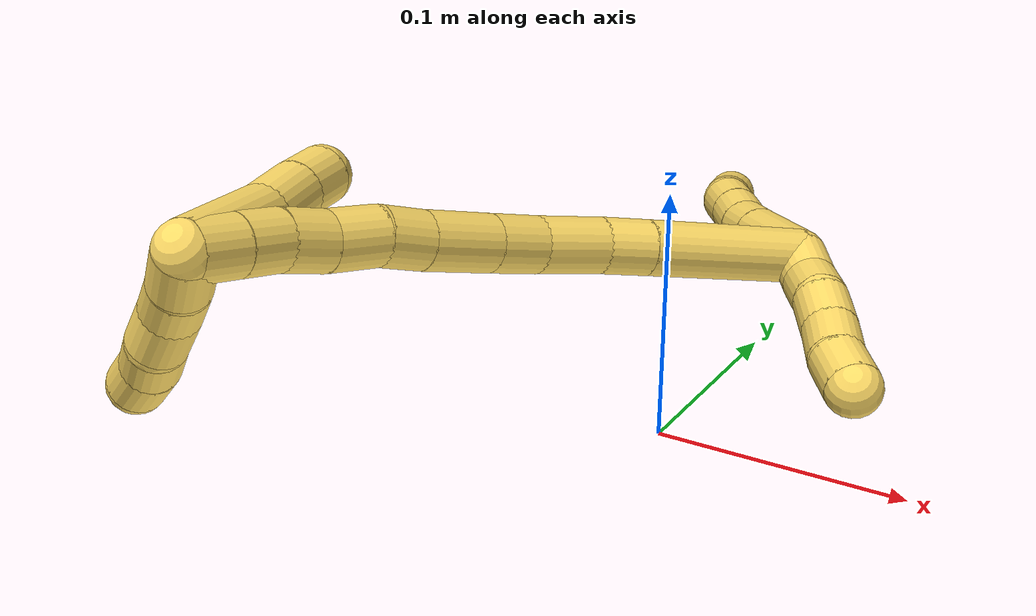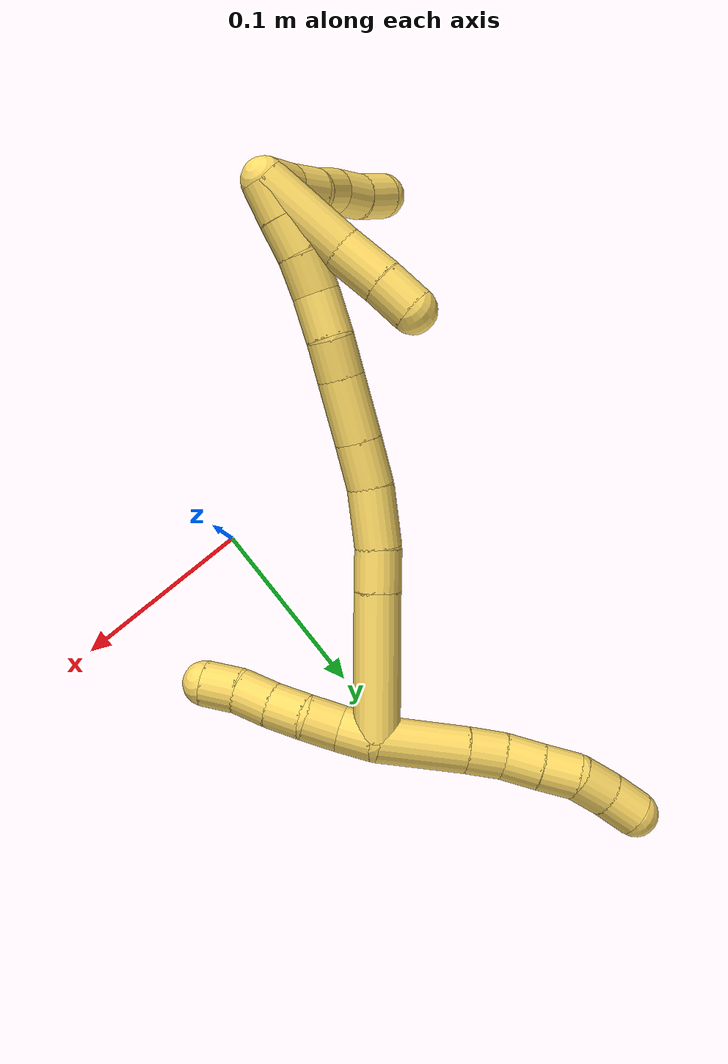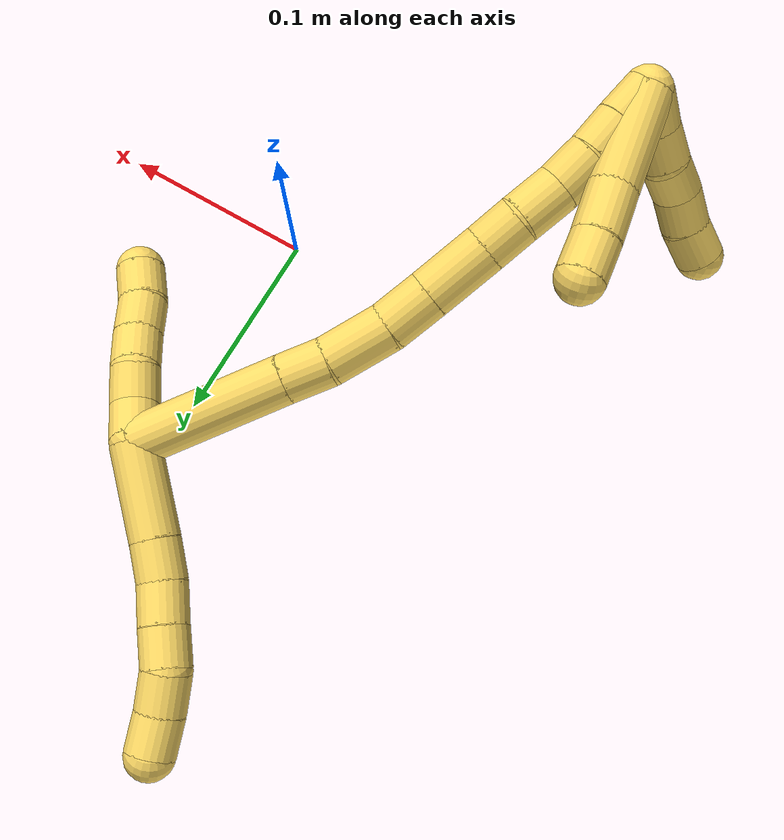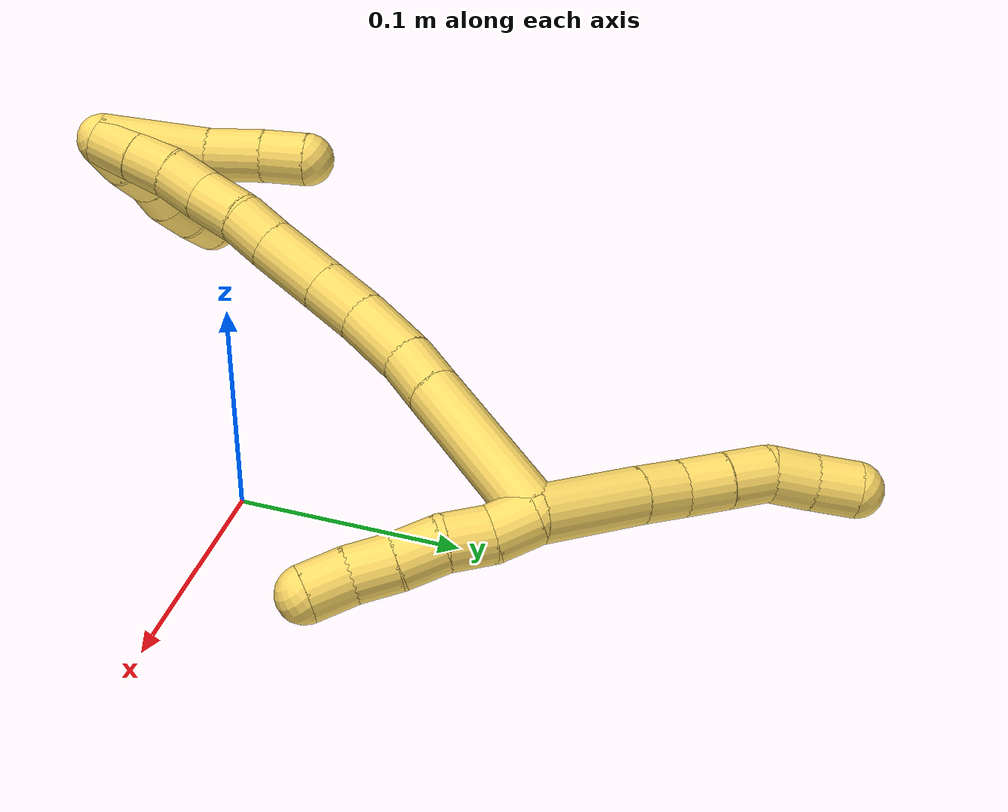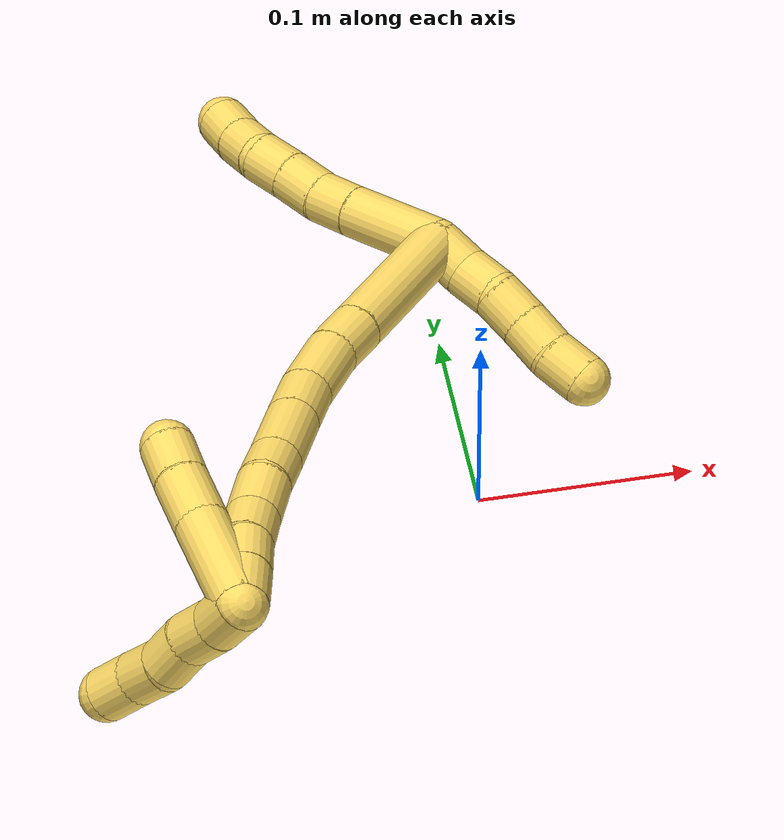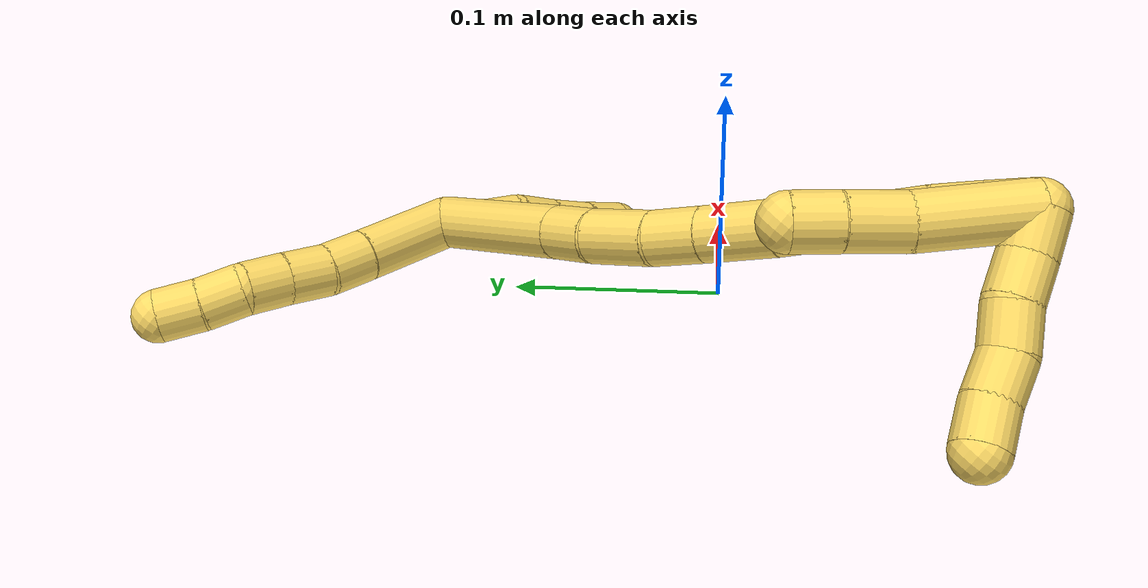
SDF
<sdf version="1.7">
 <world name="default">
  <model name="5">
   <static>0</static>
   <link name="5">
    <collision name="collision-cylinder-e_1_2_8">
     <pose>-0.018243 0.005586 -0.014931 -2.78361 -0.852616 2.38338</pose>
     <geometry><cylinder><radius>0.0125</radius><length>0.048454</length></cylinder></geometry>
     <surface>
      <friction><ode><mu>1.16</mu><mu2>1.16</mu2><slip1>0</slip1><slip2>0</slip2></ode></friction>
      <contact><ode><kp>1e+06</kp><kd>1</kd><max_vel>0</max_vel><min_depth>0.001</min_depth></ode></contact>
     </surface>
    </collision>
    <visual name="visual-cylinder-e_1_2_8">
     <pose>-0.018243 0.005586 -0.014931 -2.78361 -0.852616 2.38338</pose>
     <geometry><cylinder><radius>0.0125</radius><length>0.048454</length></cylinder></geometry>
     <material><ambient>1 0.858824 0.4 1</ambient></material>
    </visual>
    <collision name="collision-cylinder-e_2_8_9">
     <pose>-0.043969 0.013806 -0.036276 -2.75189 -0.823424 2.29264</pose>
     <geometry><cylinder><radius>0.0125</radius><length>0.020403</length></cylinder></geometry>
     <surface>
      <friction><ode><mu>1.16</mu><mu2>1.16</mu2><slip1>0</slip1><slip2>0</slip2></ode></friction>
      <contact><ode><kp>1e+06</kp><kd>1</kd><max_vel>0</max_vel><min_depth>0.001</min_depth></ode></contact>
     </surface>
    </collision>
    <visual name="visual-cylinder-e_2_8_9">
     <pose>-0.043969 0.013806 -0.036276 -2.75189 -0.823424 2.29264</pose>
     <geometry><cylinder><radius>0.0125</radius><length>0.020403</length></cylinder></geometry>
     <material><ambient>1 0.858824 0.4 1</ambient></material>
    </visual>
    <collision name="collision-cylinder-e_3_9_10">
     <pose>-0.058874 0.020726 -0.0487 -2.52203 -0.788217 1.82964</pose>
     <geometry><cylinder><radius>0.0125</radius><length>0.020936</length></cylinder></geometry>
     <surface>
      <friction><ode><mu>1.16</mu><mu2>1.16</mu2><slip1>0</slip1><slip2>0</slip2></ode></friction>
      <contact><ode><kp>1e+06</kp><kd>1</kd><max_vel>0</max_vel><min_depth>0.001</min_depth></ode></contact>
     </surface>
    </collision>
    <visual name="visual-cylinder-e_3_9_10">
     <pose>-0.058874 0.020726 -0.0487 -2.52203 -0.788217 1.82964</pose>
     <geometry><cylinder><radius>0.0125</radius><length>0.020936</length></cylinder></geometry>
     <material><ambient>1 0.858824 0.4 1</ambient></material>
    </visual>
    <collision name="collision-cylinder-e_4_10_11">
     <pose>-0.07349 0.028814 -0.060619 -2.56991 -0.797036 1.92283</pose>
     <geometry><cylinder><radius>0.0125</radius><length>0.020111</length></cylinder></geometry>
     <surface>
      <friction><ode><mu>1.16</mu><mu2>1.16</mu2><slip1>0</slip1><slip2>0</slip2></ode></friction>
      <contact><ode><kp>1e+06</kp><kd>1</kd><max_vel>0</max_vel><min_depth>0.001</min_depth></ode></contact>
     </surface>
    </collision>
    <visual name="visual-cylinder-e_4_10_11">
     <pose>-0.07349 0.028814 -0.060619 -2.56991 -0.797036 1.92283</pose>
     <geometry><cylinder><radius>0.0125</radius><length>0.020111</length></cylinder></geometry>
     <material><ambient>1 0.858824 0.4 1</ambient></material>
    </visual>
    <collision name="collision-cylinder-e_5_11_12">
     <pose>-0.085106 0.036833 -0.074475 -2.65373 -0.457045 1.50311</pose>
     <geometry><cylinder><radius>0.0125</radius><length>0.02005</length></cylinder></geometry>
     <surface>
      <friction><ode><mu>1.16</mu><mu2>1.16</mu2><slip1>0</slip1><slip2>0</slip2></ode></friction>
      <contact><ode><kp>1e+06</kp><kd>1</kd><max_vel>0</max_vel><min_depth>0.001</min_depth></ode></contact>
     </surface>
    </collision>
    <visual name="visual-cylinder-e_5_11_12">
     <pose>-0.085106 0.036833 -0.074475 -2.65373 -0.457045 1.50311</pose>
     <geometry><cylinder><radius>0.0125</radius><length>0.02005</length></cylinder></geometry>
     <material><ambient>1 0.858824 0.4 1</ambient></material>
    </visual>
    <collision name="collision-cylinder-e_6_12_6">
     <pose>-0.093722 0.046209 -0.089923 -2.53911 -0.431453 1.22856</pose>
     <geometry><cylinder><radius>0.0125</radius><length>0.020045</length></cylinder></geometry>
     <surface>
      <friction><ode><mu>1.16</mu><mu2>1.16</mu2><slip1>0</slip1><slip2>0</slip2></ode></friction>
      <contact><ode><kp>1e+06</kp><kd>1</kd><max_vel>0</max_vel><min_depth>0.001</min_depth></ode></contact>
     </surface>
    </collision>
    <visual name="visual-cylinder-e_6_12_6">
     <pose>-0.093722 0.046209 -0.089923 -2.53911 -0.431453 1.22856</pose>
     <geometry><cylinder><radius>0.0125</radius><length>0.020045</length></cylinder></geometry>
     <material><ambient>1 0.858824 0.4 1</ambient></material>
    </visual>
    <collision name="collision-cylinder-e_1_2_13">
     <pose>0.007903 -0.005189 0.003258 1.01008 0.911309 0.529157</pose>
     <geometry><cylinder><radius>0.0125</radius><length>0.02</length></cylinder></geometry>
     <surface>
      <friction><ode><mu>1.16</mu><mu2>1.16</mu2><slip1>0</slip1><slip2>0</slip2></ode></friction>
      <contact><ode><kp>1e+06</kp><kd>1</kd><max_vel>0</max_vel><min_depth>0.001</min_depth></ode></contact>
     </surface>
    </collision>
    <visual name="visual-cylinder-e_1_2_13">
     <pose>0.007903 -0.005189 0.003258 1.01008 0.911309 0.529157</pose>
     <geometry><cylinder><radius>0.0125</radius><length>0.02</length></cylinder></geometry>
     <material><ambient>1 0.858824 0.4 1</ambient></material>
    </visual>
    <collision name="collision-cylinder-e_2_13_14">
     <pose>0.022829 -0.014852 0.012054 0.679673 0.778602 0.288073</pose>
     <geometry><cylinder><radius>0.0125</radius><length>0.02</length></cylinder></geometry>
     <surface>
      <friction><ode><mu>1.16</mu><mu2>1.16</mu2><slip1>0</slip1><slip2>0</slip2></ode></friction>
      <contact><ode><kp>1e+06</kp><kd>1</kd><max_vel>0</max_vel><min_depth>0.001</min_depth></ode></contact>
     </surface>
    </collision>
    <visual name="visual-cylinder-e_2_13_14">
     <pose>0.022829 -0.014852 0.012054 0.679673 0.778602 0.288073</pose>
     <geometry><cylinder><radius>0.0125</radius><length>0.02</length></cylinder></geometry>
     <material><ambient>1 0.858824 0.4 1</ambient></material>
    </visual>
    <collision name="collision-cylinder-e_3_14_15">
     <pose>0.037402 -0.025036 0.020815 1.05668 0.855743 0.520312</pose>
     <geometry><cylinder><radius>0.0125</radius><length>0.02</length></cylinder></geometry>
     <surface>
      <friction><ode><mu>1.16</mu><mu2>1.16</mu2><slip1>0</slip1><slip2>0</slip2></ode></friction>
      <contact><ode><kp>1e+06</kp><kd>1</kd><max_vel>0</max_vel><min_depth>0.001</min_depth></ode></contact>
     </surface>
    </collision>
    <visual name="visual-cylinder-e_3_14_15">
     <pose>0.037402 -0.025036 0.020815 1.05668 0.855743 0.520312</pose>
     <geometry><cylinder><radius>0.0125</radius><length>0.02</length></cylinder></geometry>
     <material><ambient>1 0.858824 0.4 1</ambient></material>
    </visual>
    <collision name="collision-cylinder-e_4_15_16">
     <pose>0.051874 -0.036746 0.028049 0.981814 0.764461 0.423344</pose>
     <geometry><cylinder><radius>0.0125</radius><length>0.02</length></cylinder></geometry>
     <surface>
      <friction><ode><mu>1.16</mu><mu2>1.16</mu2><slip1>0</slip1><slip2>0</slip2></ode></friction>
      <contact><ode><kp>1e+06</kp><kd>1</kd><max_vel>0</max_vel><min_depth>0.001</min_depth></ode></contact>
     </surface>
    </collision>
    <visual name="visual-cylinder-e_4_15_16">
     <pose>0.051874 -0.036746 0.028049 0.981814 0.764461 0.423344</pose>
     <geometry><cylinder><radius>0.0125</radius><length>0.02</length></cylinder></geometry>
     <material><ambient>1 0.858824 0.4 1</ambient></material>
    </visual>
    <collision name="collision-cylinder-e_5_16_5">
     <pose>0.066904 -0.047284 0.035756 0.886881 0.945592 0.476669</pose>
     <geometry><cylinder><radius>0.0125</radius><length>0.02</length></cylinder></geometry>
     <surface>
      <friction><ode><mu>1.16</mu><mu2>1.16</mu2><slip1>0</slip1><slip2>0</slip2></ode></friction>
      <contact><ode><kp>1e+06</kp><kd>1</kd><max_vel>0</max_vel><min_depth>0.001</min_depth></ode></contact>
     </surface>
    </collision>
    <visual name="visual-cylinder-e_5_16_5">
     <pose>0.066904 -0.047284 0.035756 0.886881 0.945592 0.476669</pose>
     <geometry><cylinder><radius>0.0125</radius><length>0.02</length></cylinder></geometry>
     <material><ambient>1 0.858824 0.4 1</ambient></material>
    </visual>
    <collision name="collision-cylinder-e_1_2_17">
     <pose>-0.017872 -0.028544 0.020681 0.943797 -0.469263 -0.242785</pose>
     <geometry><cylinder><radius>0.0125</radius><length>0.07904</length></cylinder></geometry>
     <surface>
      <friction><ode><mu>1.16</mu><mu2>1.16</mu2><slip1>0</slip1><slip2>0</slip2></ode></friction>
      <contact><ode><kp>1e+06</kp><kd>1</kd><max_vel>0</max_vel><min_depth>0.001</min_depth></ode></contact>
     </surface>
    </collision>
    <visual name="visual-cylinder-e_1_2_17">
     <pose>-0.017872 -0.028544 0.020681 0.943797 -0.469263 -0.242785</pose>
     <geometry><cylinder><radius>0.0125</radius><length>0.07904</length></cylinder></geometry>
     <material><ambient>1 0.858824 0.4 1</ambient></material>
    </visual>
    <collision name="collision-cylinder-e_2_17_18">
     <pose>-0.041034 -0.065382 0.047181 0.958982 -0.481085 -0.253716</pose>
     <geometry><cylinder><radius>0.0125</radius><length>0.022861</length></cylinder></geometry>
     <surface>
      <friction><ode><mu>1.16</mu><mu2>1.16</mu2><slip1>0</slip1><slip2>0</slip2></ode></friction>
      <contact><ode><kp>1e+06</kp><kd>1</kd><max_vel>0</max_vel><min_depth>0.001</min_depth></ode></contact>
     </surface>
    </collision>
    <visual name="visual-cylinder-e_2_17_18">
     <pose>-0.041034 -0.065382 0.047181 0.958982 -0.481085 -0.253716</pose>
     <geometry><cylinder><radius>0.0125</radius><length>0.022861</length></cylinder></geometry>
     <material><ambient>1 0.858824 0.4 1</ambient></material>
    </visual>
    <collision name="collision-cylinder-e_3_18_19">
     <pose>-0.051788 -0.085655 0.06246 0.902351 -0.34386 -0.167868</pose>
     <geometry><cylinder><radius>0.0125</radius><length>0.032421</length></cylinder></geometry>
     <surface>
      <friction><ode><mu>1.16</mu><mu2>1.16</mu2><slip1>0</slip1><slip2>0</slip2></ode></friction>
      <contact><ode><kp>1e+06</kp><kd>1</kd><max_vel>0</max_vel><min_depth>0.001</min_depth></ode></contact>
     </surface>
    </collision>
    <visual name="visual-cylinder-e_3_18_19">
     <pose>-0.051788 -0.085655 0.06246 0.902351 -0.34386 -0.167868</pose>
     <geometry><cylinder><radius>0.0125</radius><length>0.032421</length></cylinder></geometry>
     <material><ambient>1 0.858824 0.4 1</ambient></material>
    </visual>
    <collision name="collision-cylinder-e_4_19_20">
     <pose>-0.060144 -0.106337 0.080319 0.803252 -0.234528 -0.099982</pose>
     <geometry><cylinder><radius>0.0125</radius><length>0.024877</length></cylinder></geometry>
     <surface>
      <friction><ode><mu>1.16</mu><mu2>1.16</mu2><slip1>0</slip1><slip2>0</slip2></ode></friction>
      <contact><ode><kp>1e+06</kp><kd>1</kd><max_vel>0</max_vel><min_depth>0.001</min_depth></ode></contact>
     </surface>
    </collision>
    <visual name="visual-cylinder-e_4_19_20">
     <pose>-0.060144 -0.106337 0.080319 0.803252 -0.234528 -0.099982</pose>
     <geometry><cylinder><radius>0.0125</radius><length>0.024877</length></cylinder></geometry>
     <material><ambient>1 0.858824 0.4 1</ambient></material>
    </visual>
    <collision name="collision-cylinder-e_5_20_21">
     <pose>-0.06682 -0.12681 0.100387 0.789637 -0.224613 -0.093922</pose>
     <geometry><cylinder><radius>0.0125</radius><length>0.033994</length></cylinder></geometry>
     <surface>
      <friction><ode><mu>1.16</mu><mu2>1.16</mu2><slip1>0</slip1><slip2>0</slip2></ode></friction>
      <contact><ode><kp>1e+06</kp><kd>1</kd><max_vel>0</max_vel><min_depth>0.001</min_depth></ode></contact>
     </surface>
    </collision>
    <visual name="visual-cylinder-e_5_20_21">
     <pose>-0.06682 -0.12681 0.100387 0.789637 -0.224613 -0.093922</pose>
     <geometry><cylinder><radius>0.0125</radius><length>0.033994</length></cylinder></geometry>
     <material><ambient>1 0.858824 0.4 1</ambient></material>
    </visual>
    <collision name="collision-cylinder-e_6_21_22">
     <pose>-0.07307 -0.145398 0.119542 0.738849 -0.238639 -0.092776</pose>
     <geometry><cylinder><radius>0.0125</radius><length>0.020851</length></cylinder></geometry>
     <surface>
      <friction><ode><mu>1.16</mu><mu2>1.16</mu2><slip1>0</slip1><slip2>0</slip2></ode></friction>
      <contact><ode><kp>1e+06</kp><kd>1</kd><max_vel>0</max_vel><min_depth>0.001</min_depth></ode></contact>
     </surface>
    </collision>
    <visual name="visual-cylinder-e_6_21_22">
     <pose>-0.07307 -0.145398 0.119542 0.738849 -0.238639 -0.092776</pose>
     <geometry><cylinder><radius>0.0125</radius><length>0.020851</length></cylinder></geometry>
     <material><ambient>1 0.858824 0.4 1</ambient></material>
    </visual>
    <collision name="collision-cylinder-e_7_22_23">
     <pose>-0.077439 -0.161467 0.134388 0.898716 -0.159832 -0.077207</pose>
     <geometry><cylinder><radius>0.0125</radius><length>0.023939</length></cylinder></geometry>
     <surface>
      <friction><ode><mu>1.16</mu><mu2>1.16</mu2><slip1>0</slip1><slip2>0</slip2></ode></friction>
      <contact><ode><kp>1e+06</kp><kd>1</kd><max_vel>0</max_vel><min_depth>0.001</min_depth></ode></contact>
     </surface>
    </collision>
    <visual name="visual-cylinder-e_7_22_23">
     <pose>-0.077439 -0.161467 0.134388 0.898716 -0.159832 -0.077207</pose>
     <geometry><cylinder><radius>0.0125</radius><length>0.023939</length></cylinder></geometry>
     <material><ambient>1 0.858824 0.4 1</ambient></material>
    </visual>
    <collision name="collision-cylinder-e_8_23_24">
     <pose>-0.080839 -0.177866 0.149436 0.749133 -0.141383 -0.05566</pose>
     <geometry><cylinder><radius>0.0125</radius><length>0.021216</length></cylinder></geometry>
     <surface>
      <friction><ode><mu>1.16</mu><mu2>1.16</mu2><slip1>0</slip1><slip2>0</slip2></ode></friction>
      <contact><ode><kp>1e+06</kp><kd>1</kd><max_vel>0</max_vel><min_depth>0.001</min_depth></ode></contact>
     </surface>
    </collision>
    <visual name="visual-cylinder-e_8_23_24">
     <pose>-0.080839 -0.177866 0.149436 0.749133 -0.141383 -0.05566</pose>
     <geometry><cylinder><radius>0.0125</radius><length>0.021216</length></cylinder></geometry>
     <material><ambient>1 0.858824 0.4 1</ambient></material>
    </visual>
    <collision name="collision-cylinder-e_9_24_25">
     <pose>-0.082401 -0.192263 0.164054 0.807796 -0.006678 -0.002854</pose>
     <geometry><cylinder><radius>0.0125</radius><length>0.020046</length></cylinder></geometry>
     <surface>
      <friction><ode><mu>1.16</mu><mu2>1.16</mu2><slip1>0</slip1><slip2>0</slip2></ode></friction>
      <contact><ode><kp>1e+06</kp><kd>1</kd><max_vel>0</max_vel><min_depth>0.001</min_depth></ode></contact>
     </surface>
    </collision>
    <visual name="visual-cylinder-e_9_24_25">
     <pose>-0.082401 -0.192263 0.164054 0.807796 -0.006678 -0.002854</pose>
     <geometry><cylinder><radius>0.0125</radius><length>0.020046</length></cylinder></geometry>
     <material><ambient>1 0.858824 0.4 1</ambient></material>
    </visual>
    <collision name="collision-cylinder-e_10_25_1">
     <pose>-0.082764 -0.207153 0.177989 0.828903 -0.028529 -0.012551</pose>
     <geometry><cylinder><radius>0.0125</radius><length>0.020754</length></cylinder></geometry>
     <surface>
      <friction><ode><mu>1.16</mu><mu2>1.16</mu2><slip1>0</slip1><slip2>0</slip2></ode></friction>
      <contact><ode><kp>1e+06</kp><kd>1</kd><max_vel>0</max_vel><min_depth>0.001</min_depth></ode></contact>
     </surface>
    </collision>
    <visual name="visual-cylinder-e_10_25_1">
     <pose>-0.082764 -0.207153 0.177989 0.828903 -0.028529 -0.012551</pose>
     <geometry><cylinder><radius>0.0125</radius><length>0.020754</length></cylinder></geometry>
     <material><ambient>1 0.858824 0.4 1</ambient></material>
    </visual>
    <collision name="collision-cylinder-e_1_1_26">
     <pose>-0.085516 -0.218955 0.17624 2.69863 -0.248179 -1.01171</pose>
     <geometry><cylinder><radius>0.0125</radius><length>0.02</length></cylinder></geometry>
     <surface>
      <friction><ode><mu>1.16</mu><mu2>1.16</mu2><slip1>0</slip1><slip2>0</slip2></ode></friction>
      <contact><ode><kp>1e+06</kp><kd>1</kd><max_vel>0</max_vel><min_depth>0.001</min_depth></ode></contact>
     </surface>
    </collision>
    <visual name="visual-cylinder-e_1_1_26">
     <pose>-0.085516 -0.218955 0.17624 2.69863 -0.248179 -1.01171</pose>
     <geometry><cylinder><radius>0.0125</radius><length>0.02</length></cylinder></geometry>
     <material><ambient>1 0.858824 0.4 1</ambient></material>
    </visual>
    <collision name="collision-cylinder-e_2_26_27">
     <pose>-0.091809 -0.226819 0.159025 2.72822 -0.393759 -1.52086</pose>
     <geometry><cylinder><radius>0.0125</radius><length>0.02</length></cylinder></geometry>
     <surface>
      <friction><ode><mu>1.16</mu><mu2>1.16</mu2><slip1>0</slip1><slip2>0</slip2></ode></friction>
      <contact><ode><kp>1e+06</kp><kd>1</kd><max_vel>0</max_vel><min_depth>0.001</min_depth></ode></contact>
     </surface>
    </collision>
    <visual name="visual-cylinder-e_2_26_27">
     <pose>-0.091809 -0.226819 0.159025 2.72822 -0.393759 -1.52086</pose>
     <geometry><cylinder><radius>0.0125</radius><length>0.02</length></cylinder></geometry>
     <material><ambient>1 0.858824 0.4 1</ambient></material>
    </visual>
    <collision name="collision-cylinder-e_3_27_28">
     <pose>-0.098251 -0.236192 0.142748 2.51477 -0.263515 -0.776333</pose>
     <geometry><cylinder><radius>0.0125</radius><length>0.02</length></cylinder></geometry>
     <surface>
      <friction><ode><mu>1.16</mu><mu2>1.16</mu2><slip1>0</slip1><slip2>0</slip2></ode></friction>
      <contact><ode><kp>1e+06</kp><kd>1</kd><max_vel>0</max_vel><min_depth>0.001</min_depth></ode></contact>
     </surface>
    </collision>
    <visual name="visual-cylinder-e_3_27_28">
     <pose>-0.098251 -0.236192 0.142748 2.51477 -0.263515 -0.776333</pose>
     <geometry><cylinder><radius>0.0125</radius><length>0.02</length></cylinder></geometry>
     <material><ambient>1 0.858824 0.4 1</ambient></material>
    </visual>
    <collision name="collision-cylinder-e_4_28_29">
     <pose>-0.104731 -0.245136 0.126314 2.77775 -0.397947 -1.66246</pose>
     <geometry><cylinder><radius>0.0125</radius><length>0.02</length></cylinder></geometry>
     <surface>
      <friction><ode><mu>1.16</mu><mu2>1.16</mu2><slip1>0</slip1><slip2>0</slip2></ode></friction>
      <contact><ode><kp>1e+06</kp><kd>1</kd><max_vel>0</max_vel><min_depth>0.001</min_depth></ode></contact>
     </surface>
    </collision>
    <visual name="visual-cylinder-e_4_28_29">
     <pose>-0.104731 -0.245136 0.126314 2.77775 -0.397947 -1.66246</pose>
     <geometry><cylinder><radius>0.0125</radius><length>0.02</length></cylinder></geometry>
     <material><ambient>1 0.858824 0.4 1</ambient></material>
    </visual>
    <collision name="collision-cylinder-e_5_29_4">
     <pose>-0.113273 -0.252757 0.109993 2.62866 -0.485615 -1.51376</pose>
     <geometry><cylinder><radius>0.0125</radius><length>0.02</length></cylinder></geometry>
     <surface>
      <friction><ode><mu>1.16</mu><mu2>1.16</mu2><slip1>0</slip1><slip2>0</slip2></ode></friction>
      <contact><ode><kp>1e+06</kp><kd>1</kd><max_vel>0</max_vel><min_depth>0.001</min_depth></ode></contact>
     </surface>
    </collision>
    <visual name="visual-cylinder-e_5_29_4">
     <pose>-0.113273 -0.252757 0.109993 2.62866 -0.485615 -1.51376</pose>
     <geometry><cylinder><radius>0.0125</radius><length>0.02</length></cylinder></geometry>
     <material><ambient>1 0.858824 0.4 1</ambient></material>
    </visual>
    <collision name="collision-cylinder-e_1_1_30">
     <pose>-0.092426 -0.197758 0.167701 -2.3636 -0.368154 0.852751</pose>
     <geometry><cylinder><radius>0.0125</radius><length>0.052051</length></cylinder></geometry>
     <surface>
      <friction><ode><mu>1.16</mu><mu2>1.16</mu2><slip1>0</slip1><slip2>0</slip2></ode></friction>
      <contact><ode><kp>1e+06</kp><kd>1</kd><max_vel>0</max_vel><min_depth>0.001</min_depth></ode></contact>
     </surface>
    </collision>
    <visual name="visual-cylinder-e_1_1_30">
     <pose>-0.092426 -0.197758 0.167701 -2.3636 -0.368154 0.852751</pose>
     <geometry><cylinder><radius>0.0125</radius><length>0.052051</length></cylinder></geometry>
     <material><ambient>1 0.858824 0.4 1</ambient></material>
    </visual>
    <collision name="collision-cylinder-e_2_30_31">
     <pose>-0.107335 -0.171231 0.142662 -2.25542 -0.425059 0.853541</pose>
     <geometry><cylinder><radius>0.0125</radius><length>0.026881</length></cylinder></geometry>
     <surface>
      <friction><ode><mu>1.16</mu><mu2>1.16</mu2><slip1>0</slip1><slip2>0</slip2></ode></friction>
      <contact><ode><kp>1e+06</kp><kd>1</kd><max_vel>0</max_vel><min_depth>0.001</min_depth></ode></contact>
     </surface>
    </collision>
    <visual name="visual-cylinder-e_2_30_31">
     <pose>-0.107335 -0.171231 0.142662 -2.25542 -0.425059 0.853541</pose>
     <geometry><cylinder><radius>0.0125</radius><length>0.026881</length></cylinder></geometry>
     <material><ambient>1 0.858824 0.4 1</ambient></material>
    </visual>
    <collision name="collision-cylinder-e_3_31_3">
     <pose>-0.116663 -0.154227 0.128586 -2.27072 -0.367615 0.760338</pose>
     <geometry><cylinder><radius>0.0125</radius><length>0.021069</length></cylinder></geometry>
     <surface>
      <friction><ode><mu>1.16</mu><mu2>1.16</mu2><slip1>0</slip1><slip2>0</slip2></ode></friction>
      <contact><ode><kp>1e+06</kp><kd>1</kd><max_vel>0</max_vel><min_depth>0.001</min_depth></ode></contact>
     </surface>
    </collision>
    <visual name="visual-cylinder-e_3_31_3">
     <pose>-0.116663 -0.154227 0.128586 -2.27072 -0.367615 0.760338</pose>
     <geometry><cylinder><radius>0.0125</radius><length>0.021069</length></cylinder></geometry>
     <material><ambient>1 0.858824 0.4 1</ambient></material>
    </visual>
    <collision name="collision-sphere-3">
     <pose>-0.120449 -0.146707 0.122254 0 -0 0</pose>
     <geometry><sphere><radius>0.0125</radius></sphere></geometry>
     <surface>
      <friction><ode><mu>1.16</mu><mu2>1.16</mu2><slip1>0</slip1><slip2>0</slip2></ode></friction>
      <contact><ode><kp>1e+06</kp><kd>1</kd><max_vel>0</max_vel><min_depth>0.001</min_depth></ode></contact>
     </surface>
    </collision>
    <visual name="visual-sphere-3">
     <pose>-0.120449 -0.146707 0.122254 0 -0 0</pose>
     <geometry><sphere><radius>0.0125</radius></sphere></geometry>
     <material><ambient>1 0.858824 0.4 1</ambient></material>
    </visual>
    <collision name="collision-sphere-31">
     <pose>-0.112877 -0.161746 0.134919 0 -0 0</pose>
     <geometry><sphere><radius>0.0125</radius></sphere></geometry>
     <surface>
      <friction><ode><mu>1.16</mu><mu2>1.16</mu2><slip1>0</slip1><slip2>0</slip2></ode></friction>
      <contact><ode><kp>1e+06</kp><kd>1</kd><max_vel>0</max_vel><min_depth>0.001</min_depth></ode></contact>
     </surface>
    </collision>
    <visual name="visual-sphere-31">
     <pose>-0.112877 -0.161746 0.134919 0 -0 0</pose>
     <geometry><sphere><radius>0.0125</radius></sphere></geometry>
     <material><ambient>1 0.858824 0.4 1</ambient></material>
    </visual>
    <collision name="collision-sphere-30">
     <pose>-0.101792 -0.180716 0.150405 0 -0 0</pose>
     <geometry><sphere><radius>0.0125</radius></sphere></geometry>
     <surface>
      <friction><ode><mu>1.16</mu><mu2>1.16</mu2><slip1>0</slip1><slip2>0</slip2></ode></friction>
      <contact><ode><kp>1e+06</kp><kd>1</kd><max_vel>0</max_vel><min_depth>0.001</min_depth></ode></contact>
     </surface>
    </collision>
    <visual name="visual-sphere-30">
     <pose>-0.101792 -0.180716 0.150405 0 -0 0</pose>
     <geometry><sphere><radius>0.0125</radius></sphere></geometry>
     <material><ambient>1 0.858824 0.4 1</ambient></material>
    </visual>
    <collision name="collision-sphere-4">
     <pose>-0.117941 -0.257097 0.102287 0 -0 0</pose>
     <geometry><sphere><radius>0.0125</radius></sphere></geometry>
     <surface>
      <friction><ode><mu>1.16</mu><mu2>1.16</mu2><slip1>0</slip1><slip2>0</slip2></ode></friction>
      <contact><ode><kp>1e+06</kp><kd>1</kd><max_vel>0</max_vel><min_depth>0.001</min_depth></ode></contact>
     </surface>
    </collision>
    <visual name="visual-sphere-4">
     <pose>-0.117941 -0.257097 0.102287 0 -0 0</pose>
     <geometry><sphere><radius>0.0125</radius></sphere></geometry>
     <material><ambient>1 0.858824 0.4 1</ambient></material>
    </visual>
    <collision name="collision-sphere-29">
     <pose>-0.108606 -0.248417 0.117699 0 -0 0</pose>
     <geometry><sphere><radius>0.0125</radius></sphere></geometry>
     <surface>
      <friction><ode><mu>1.16</mu><mu2>1.16</mu2><slip1>0</slip1><slip2>0</slip2></ode></friction>
      <contact><ode><kp>1e+06</kp><kd>1</kd><max_vel>0</max_vel><min_depth>0.001</min_depth></ode></contact>
     </surface>
    </collision>
    <visual name="visual-sphere-29">
     <pose>-0.108606 -0.248417 0.117699 0 -0 0</pose>
     <geometry><sphere><radius>0.0125</radius></sphere></geometry>
     <material><ambient>1 0.858824 0.4 1</ambient></material>
    </visual>
    <collision name="collision-sphere-28">
     <pose>-0.100855 -0.241855 0.134929 0 -0 0</pose>
     <geometry><sphere><radius>0.0125</radius></sphere></geometry>
     <surface>
      <friction><ode><mu>1.16</mu><mu2>1.16</mu2><slip1>0</slip1><slip2>0</slip2></ode></friction>
      <contact><ode><kp>1e+06</kp><kd>1</kd><max_vel>0</max_vel><min_depth>0.001</min_depth></ode></contact>
     </surface>
    </collision>
    <visual name="visual-sphere-28">
     <pose>-0.100855 -0.241855 0.134929 0 -0 0</pose>
     <geometry><sphere><radius>0.0125</radius></sphere></geometry>
     <material><ambient>1 0.858824 0.4 1</ambient></material>
    </visual>
    <collision name="collision-sphere-27">
     <pose>-0.095646 -0.230529 0.150568 0 -0 0</pose>
     <geometry><sphere><radius>0.0125</radius></sphere></geometry>
     <surface>
      <friction><ode><mu>1.16</mu><mu2>1.16</mu2><slip1>0</slip1><slip2>0</slip2></ode></friction>
      <contact><ode><kp>1e+06</kp><kd>1</kd><max_vel>0</max_vel><min_depth>0.001</min_depth></ode></contact>
     </surface>
    </collision>
    <visual name="visual-sphere-27">
     <pose>-0.095646 -0.230529 0.150568 0 -0 0</pose>
     <geometry><sphere><radius>0.0125</radius></sphere></geometry>
     <material><ambient>1 0.858824 0.4 1</ambient></material>
    </visual>
    <collision name="collision-sphere-26">
     <pose>-0.087973 -0.22311 0.167482 0 -0 0</pose>
     <geometry><sphere><radius>0.0125</radius></sphere></geometry>
     <surface>
      <friction><ode><mu>1.16</mu><mu2>1.16</mu2><slip1>0</slip1><slip2>0</slip2></ode></friction>
      <contact><ode><kp>1e+06</kp><kd>1</kd><max_vel>0</max_vel><min_depth>0.001</min_depth></ode></contact>
     </surface>
    </collision>
    <visual name="visual-sphere-26">
     <pose>-0.087973 -0.22311 0.167482 0 -0 0</pose>
     <geometry><sphere><radius>0.0125</radius></sphere></geometry>
     <material><ambient>1 0.858824 0.4 1</ambient></material>
    </visual>
    <collision name="collision-sphere-1">
     <pose>-0.08306 -0.2148 0.184998 0 -0 0</pose>
     <geometry><sphere><radius>0.0125</radius></sphere></geometry>
     <surface>
      <friction><ode><mu>1.16</mu><mu2>1.16</mu2><slip1>0</slip1><slip2>0</slip2></ode></friction>
      <contact><ode><kp>1e+06</kp><kd>1</kd><max_vel>0</max_vel><min_depth>0.001</min_depth></ode></contact>
     </surface>
    </collision>
    <visual name="visual-sphere-1">
     <pose>-0.08306 -0.2148 0.184998 0 -0 0</pose>
     <geometry><sphere><radius>0.0125</radius></sphere></geometry>
     <material><ambient>1 0.858824 0.4 1</ambient></material>
    </visual>
    <collision name="collision-sphere-25">
     <pose>-0.082468 -0.199507 0.17098 0 -0 0</pose>
     <geometry><sphere><radius>0.0125</radius></sphere></geometry>
     <surface>
      <friction><ode><mu>1.16</mu><mu2>1.16</mu2><slip1>0</slip1><slip2>0</slip2></ode></friction>
      <contact><ode><kp>1e+06</kp><kd>1</kd><max_vel>0</max_vel><min_depth>0.001</min_depth></ode></contact>
     </surface>
    </collision>
    <visual name="visual-sphere-25">
     <pose>-0.082468 -0.199507 0.17098 0 -0 0</pose>
     <geometry><sphere><radius>0.0125</radius></sphere></geometry>
     <material><ambient>1 0.858824 0.4 1</ambient></material>
    </visual>
    <collision name="collision-sphere-24">
     <pose>-0.082334 -0.185019 0.157127 0 -0 0</pose>
     <geometry><sphere><radius>0.0125</radius></sphere></geometry>
     <surface>
      <friction><ode><mu>1.16</mu><mu2>1.16</mu2><slip1>0</slip1><slip2>0</slip2></ode></friction>
      <contact><ode><kp>1e+06</kp><kd>1</kd><max_vel>0</max_vel><min_depth>0.001</min_depth></ode></contact>
     </surface>
    </collision>
    <visual name="visual-sphere-24">
     <pose>-0.082334 -0.185019 0.157127 0 -0 0</pose>
     <geometry><sphere><radius>0.0125</radius></sphere></geometry>
     <material><ambient>1 0.858824 0.4 1</ambient></material>
    </visual>
    <collision name="collision-sphere-23">
     <pose>-0.079344 -0.170714 0.141746 0 -0 0</pose>
     <geometry><sphere><radius>0.0125</radius></sphere></geometry>
     <surface>
      <friction><ode><mu>1.16</mu><mu2>1.16</mu2><slip1>0</slip1><slip2>0</slip2></ode></friction>
      <contact><ode><kp>1e+06</kp><kd>1</kd><max_vel>0</max_vel><min_depth>0.001</min_depth></ode></contact>
     </surface>
    </collision>
    <visual name="visual-sphere-23">
     <pose>-0.079344 -0.170714 0.141746 0 -0 0</pose>
     <geometry><sphere><radius>0.0125</radius></sphere></geometry>
     <material><ambient>1 0.858824 0.4 1</ambient></material>
    </visual>
    <collision name="collision-sphere-22">
     <pose>-0.075534 -0.15222 0.127031 0 -0 0</pose>
     <geometry><sphere><radius>0.0125</radius></sphere></geometry>
     <surface>
      <friction><ode><mu>1.16</mu><mu2>1.16</mu2><slip1>0</slip1><slip2>0</slip2></ode></friction>
      <contact><ode><kp>1e+06</kp><kd>1</kd><max_vel>0</max_vel><min_depth>0.001</min_depth></ode></contact>
     </surface>
    </collision>
    <visual name="visual-sphere-22">
     <pose>-0.075534 -0.15222 0.127031 0 -0 0</pose>
     <geometry><sphere><radius>0.0125</radius></sphere></geometry>
     <material><ambient>1 0.858824 0.4 1</ambient></material>
    </visual>
    <collision name="collision-sphere-21">
     <pose>-0.070606 -0.138576 0.112054 0 -0 0</pose>
     <geometry><sphere><radius>0.0125</radius></sphere></geometry>
     <surface>
      <friction><ode><mu>1.16</mu><mu2>1.16</mu2><slip1>0</slip1><slip2>0</slip2></ode></friction>
      <contact><ode><kp>1e+06</kp><kd>1</kd><max_vel>0</max_vel><min_depth>0.001</min_depth></ode></contact>
     </surface>
    </collision>
    <visual name="visual-sphere-21">
     <pose>-0.070606 -0.138576 0.112054 0 -0 0</pose>
     <geometry><sphere><radius>0.0125</radius></sphere></geometry>
     <material><ambient>1 0.858824 0.4 1</ambient></material>
    </visual>
    <collision name="collision-sphere-12">
     <pose>-0.08953 0.04105 -0.082422 0 -0 0</pose>
     <geometry><sphere><radius>0.0125</radius></sphere></geometry>
     <surface>
      <friction><ode><mu>1.16</mu><mu2>1.16</mu2><slip1>0</slip1><slip2>0</slip2></ode></friction>
      <contact><ode><kp>1e+06</kp><kd>1</kd><max_vel>0</max_vel><min_depth>0.001</min_depth></ode></contact>
     </surface>
    </collision>
    <visual name="visual-sphere-12">
     <pose>-0.08953 0.04105 -0.082422 0 -0 0</pose>
     <geometry><sphere><radius>0.0125</radius></sphere></geometry>
     <material><ambient>1 0.858824 0.4 1</ambient></material>
    </visual>
    <collision name="collision-sphere-11">
     <pose>-0.080682 0.032616 -0.066529 0 -0 0</pose>
     <geometry><sphere><radius>0.0125</radius></sphere></geometry>
     <surface>
      <friction><ode><mu>1.16</mu><mu2>1.16</mu2><slip1>0</slip1><slip2>0</slip2></ode></friction>
      <contact><ode><kp>1e+06</kp><kd>1</kd><max_vel>0</max_vel><min_depth>0.001</min_depth></ode></contact>
     </surface>
    </collision>
    <visual name="visual-sphere-11">
     <pose>-0.080682 0.032616 -0.066529 0 -0 0</pose>
     <geometry><sphere><radius>0.0125</radius></sphere></geometry>
     <material><ambient>1 0.858824 0.4 1</ambient></material>
    </visual>
    <collision name="collision-sphere-10">
     <pose>-0.066297 0.025012 -0.054709 0 -0 0</pose>
     <geometry><sphere><radius>0.0125</radius></sphere></geometry>
     <surface>
      <friction><ode><mu>1.16</mu><mu2>1.16</mu2><slip1>0</slip1><slip2>0</slip2></ode></friction>
      <contact><ode><kp>1e+06</kp><kd>1</kd><max_vel>0</max_vel><min_depth>0.001</min_depth></ode></contact>
     </surface>
    </collision>
    <visual name="visual-sphere-10">
     <pose>-0.066297 0.025012 -0.054709 0 -0 0</pose>
     <geometry><sphere><radius>0.0125</radius></sphere></geometry>
     <material><ambient>1 0.858824 0.4 1</ambient></material>
    </visual>
    <collision name="collision-sphere-9">
     <pose>-0.051451 0.01644 -0.042691 0 -0 0</pose>
     <geometry><sphere><radius>0.0125</radius></sphere></geometry>
     <surface>
      <friction><ode><mu>1.16</mu><mu2>1.16</mu2><slip1>0</slip1><slip2>0</slip2></ode></friction>
      <contact><ode><kp>1e+06</kp><kd>1</kd><max_vel>0</max_vel><min_depth>0.001</min_depth></ode></contact>
     </surface>
    </collision>
    <visual name="visual-sphere-9">
     <pose>-0.051451 0.01644 -0.042691 0 -0 0</pose>
     <geometry><sphere><radius>0.0125</radius></sphere></geometry>
     <material><ambient>1 0.858824 0.4 1</ambient></material>
    </visual>
    <collision name="collision-sphere-2">
     <geometry><sphere><radius>0.0125</radius></sphere></geometry>
     <surface>
      <friction><ode><mu>1.16</mu><mu2>1.16</mu2><slip1>0</slip1><slip2>0</slip2></ode></friction>
      <contact><ode><kp>1e+06</kp><kd>1</kd><max_vel>0</max_vel><min_depth>0.001</min_depth></ode></contact>
     </surface>
    </collision>
    <visual name="visual-sphere-2">
     <geometry><sphere><radius>0.0125</radius></sphere></geometry>
     <material><ambient>1 0.858824 0.4 1</ambient></material>
    </visual>
    <collision name="collision-sphere-19">
     <pose>-0.057253 -0.097632 0.071919 0 -0 0</pose>
     <geometry><sphere><radius>0.0125</radius></sphere></geometry>
     <surface>
      <friction><ode><mu>1.16</mu><mu2>1.16</mu2><slip1>0</slip1><slip2>0</slip2></ode></friction>
      <contact><ode><kp>1e+06</kp><kd>1</kd><max_vel>0</max_vel><min_depth>0.001</min_depth></ode></contact>
     </surface>
    </collision>
    <visual name="visual-sphere-19">
     <pose>-0.057253 -0.097632 0.071919 0 -0 0</pose>
     <geometry><sphere><radius>0.0125</radius></sphere></geometry>
     <material><ambient>1 0.858824 0.4 1</ambient></material>
    </visual>
    <collision name="collision-sphere-8">
     <pose>-0.036486 0.011172 -0.029862 0 -0 0</pose>
     <geometry><sphere><radius>0.0125</radius></sphere></geometry>
     <surface>
      <friction><ode><mu>1.16</mu><mu2>1.16</mu2><slip1>0</slip1><slip2>0</slip2></ode></friction>
      <contact><ode><kp>1e+06</kp><kd>1</kd><max_vel>0</max_vel><min_depth>0.001</min_depth></ode></contact>
     </surface>
    </collision>
    <visual name="visual-sphere-8">
     <pose>-0.036486 0.011172 -0.029862 0 -0 0</pose>
     <geometry><sphere><radius>0.0125</radius></sphere></geometry>
     <material><ambient>1 0.858824 0.4 1</ambient></material>
    </visual>
    <collision name="collision-sphere-6">
     <pose>-0.097913 0.051368 -0.097425 0 -0 0</pose>
     <geometry><sphere><radius>0.0125</radius></sphere></geometry>
     <surface>
      <friction><ode><mu>1.16</mu><mu2>1.16</mu2><slip1>0</slip1><slip2>0</slip2></ode></friction>
      <contact><ode><kp>1e+06</kp><kd>1</kd><max_vel>0</max_vel><min_depth>0.001</min_depth></ode></contact>
     </surface>
    </collision>
    <visual name="visual-sphere-6">
     <pose>-0.097913 0.051368 -0.097425 0 -0 0</pose>
     <geometry><sphere><radius>0.0125</radius></sphere></geometry>
     <material><ambient>1 0.858824 0.4 1</ambient></material>
    </visual>
    <collision name="collision-sphere-13">
     <pose>0.015806 -0.010378 0.006517 0 -0 0</pose>
     <geometry><sphere><radius>0.0125</radius></sphere></geometry>
     <surface>
      <friction><ode><mu>1.16</mu><mu2>1.16</mu2><slip1>0</slip1><slip2>0</slip2></ode></friction>
      <contact><ode><kp>1e+06</kp><kd>1</kd><max_vel>0</max_vel><min_depth>0.001</min_depth></ode></contact>
     </surface>
    </collision>
    <visual name="visual-sphere-13">
     <pose>0.015806 -0.010378 0.006517 0 -0 0</pose>
     <geometry><sphere><radius>0.0125</radius></sphere></geometry>
     <material><ambient>1 0.858824 0.4 1</ambient></material>
    </visual>
    <collision name="collision-sphere-14">
     <pose>0.029852 -0.019327 0.017591 0 -0 0</pose>
     <geometry><sphere><radius>0.0125</radius></sphere></geometry>
     <surface>
      <friction><ode><mu>1.16</mu><mu2>1.16</mu2><slip1>0</slip1><slip2>0</slip2></ode></friction>
      <contact><ode><kp>1e+06</kp><kd>1</kd><max_vel>0</max_vel><min_depth>0.001</min_depth></ode></contact>
     </surface>
    </collision>
    <visual name="visual-sphere-14">
     <pose>0.029852 -0.019327 0.017591 0 -0 0</pose>
     <geometry><sphere><radius>0.0125</radius></sphere></geometry>
     <material><ambient>1 0.858824 0.4 1</ambient></material>
    </visual>
    <collision name="collision-sphere-15">
     <pose>0.044953 -0.030745 0.024039 0 -0 0</pose>
     <geometry><sphere><radius>0.0125</radius></sphere></geometry>
     <surface>
      <friction><ode><mu>1.16</mu><mu2>1.16</mu2><slip1>0</slip1><slip2>0</slip2></ode></friction>
      <contact><ode><kp>1e+06</kp><kd>1</kd><max_vel>0</max_vel><min_depth>0.001</min_depth></ode></contact>
     </surface>
    </collision>
    <visual name="visual-sphere-15">
     <pose>0.044953 -0.030745 0.024039 0 -0 0</pose>
     <geometry><sphere><radius>0.0125</radius></sphere></geometry>
     <material><ambient>1 0.858824 0.4 1</ambient></material>
    </visual>
    <collision name="collision-sphere-16">
     <pose>0.058796 -0.042748 0.032058 0 -0 0</pose>
     <geometry><sphere><radius>0.0125</radius></sphere></geometry>
     <surface>
      <friction><ode><mu>1.16</mu><mu2>1.16</mu2><slip1>0</slip1><slip2>0</slip2></ode></friction>
      <contact><ode><kp>1e+06</kp><kd>1</kd><max_vel>0</max_vel><min_depth>0.001</min_depth></ode></contact>
     </surface>
    </collision>
    <visual name="visual-sphere-16">
     <pose>0.058796 -0.042748 0.032058 0 -0 0</pose>
     <geometry><sphere><radius>0.0125</radius></sphere></geometry>
     <material><ambient>1 0.858824 0.4 1</ambient></material>
    </visual>
    <collision name="collision-sphere-5">
     <pose>0.075013 -0.051821 0.039454 0 -0 0</pose>
     <geometry><sphere><radius>0.0125</radius></sphere></geometry>
     <surface>
      <friction><ode><mu>1.16</mu><mu2>1.16</mu2><slip1>0</slip1><slip2>0</slip2></ode></friction>
      <contact><ode><kp>1e+06</kp><kd>1</kd><max_vel>0</max_vel><min_depth>0.001</min_depth></ode></contact>
     </surface>
    </collision>
    <visual name="visual-sphere-5">
     <pose>0.075013 -0.051821 0.039454 0 -0 0</pose>
     <geometry><sphere><radius>0.0125</radius></sphere></geometry>
     <material><ambient>1 0.858824 0.4 1</ambient></material>
    </visual>
    <collision name="collision-sphere-17">
     <pose>-0.035744 -0.057087 0.041361 0 -0 0</pose>
     <geometry><sphere><radius>0.0125</radius></sphere></geometry>
     <surface>
      <friction><ode><mu>1.16</mu><mu2>1.16</mu2><slip1>0</slip1><slip2>0</slip2></ode></friction>
      <contact><ode><kp>1e+06</kp><kd>1</kd><max_vel>0</max_vel><min_depth>0.001</min_depth></ode></contact>
     </surface>
    </collision>
    <visual name="visual-sphere-17">
     <pose>-0.035744 -0.057087 0.041361 0 -0 0</pose>
     <geometry><sphere><radius>0.0125</radius></sphere></geometry>
     <material><ambient>1 0.858824 0.4 1</ambient></material>
    </visual>
    <collision name="collision-sphere-18">
     <pose>-0.046323 -0.073678 0.053001 0 -0 0</pose>
     <geometry><sphere><radius>0.0125</radius></sphere></geometry>
     <surface>
      <friction><ode><mu>1.16</mu><mu2>1.16</mu2><slip1>0</slip1><slip2>0</slip2></ode></friction>
      <contact><ode><kp>1e+06</kp><kd>1</kd><max_vel>0</max_vel><min_depth>0.001</min_depth></ode></contact>
     </surface>
    </collision>
    <visual name="visual-sphere-18">
     <pose>-0.046323 -0.073678 0.053001 0 -0 0</pose>
     <geometry><sphere><radius>0.0125</radius></sphere></geometry>
     <material><ambient>1 0.858824 0.4 1</ambient></material>
    </visual>
    <collision name="collision-sphere-20">
     <pose>-0.063034 -0.115043 0.08872 0 -0 0</pose>
     <geometry><sphere><radius>0.0125</radius></sphere></geometry>
     <surface>
      <friction><ode><mu>1.16</mu><mu2>1.16</mu2><slip1>0</slip1><slip2>0</slip2></ode></friction>
      <contact><ode><kp>1e+06</kp><kd>1</kd><max_vel>0</max_vel><min_depth>0.001</min_depth></ode></contact>
     </surface>
    </collision>
    <visual name="visual-sphere-20">
     <pose>-0.063034 -0.115043 0.08872 0 -0 0</pose>
     <geometry><sphere><radius>0.0125</radius></sphere></geometry>
     <material><ambient>1 0.858824 0.4 1</ambient></material>
    </visual>
    <inertial>
     <pose>-0.054165 -0.09787 0.067429 0 -0 0</pose>
     <mass>0.75</mass>
     <inertia><ixx>6.3e-05</ixx><ixy>0</ixy><ixz>0</ixz><iyy>5e-05</iyy><iyz>0</iyz><izz>7.6e-05</izz></inertia>
    </inertial>
   </link>
   <pose>0.005168 0.134857 0.031409 0.580961 0.318 -0.243808</pose>
  </model>
 </world>
</sdf>
